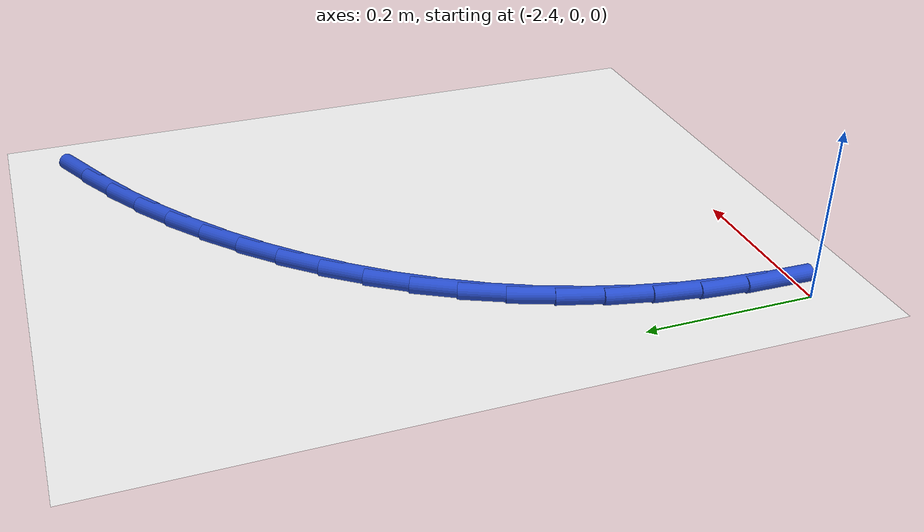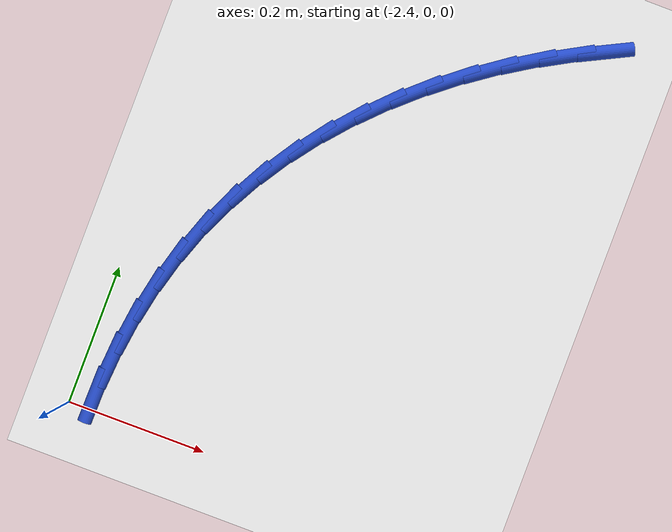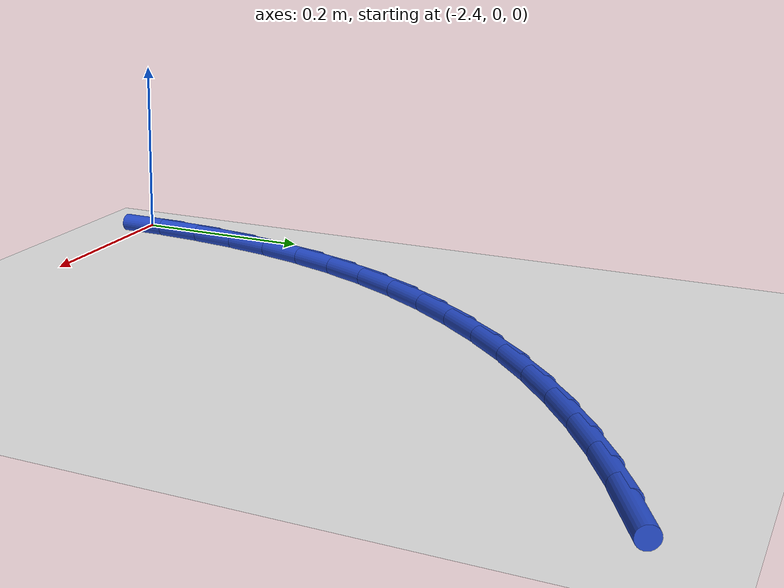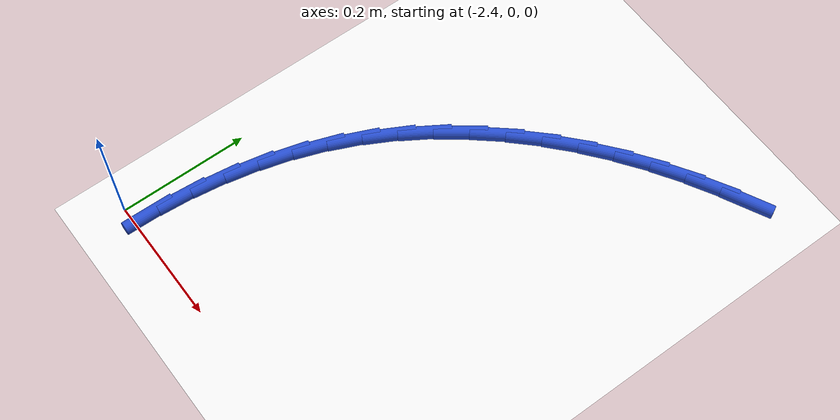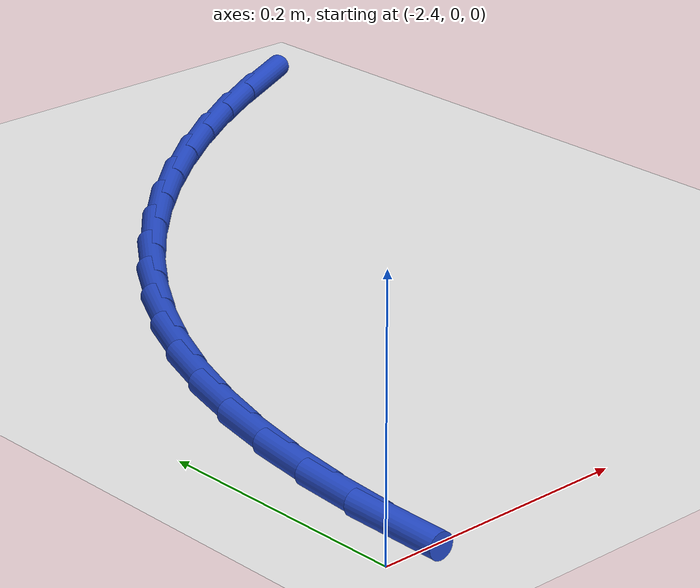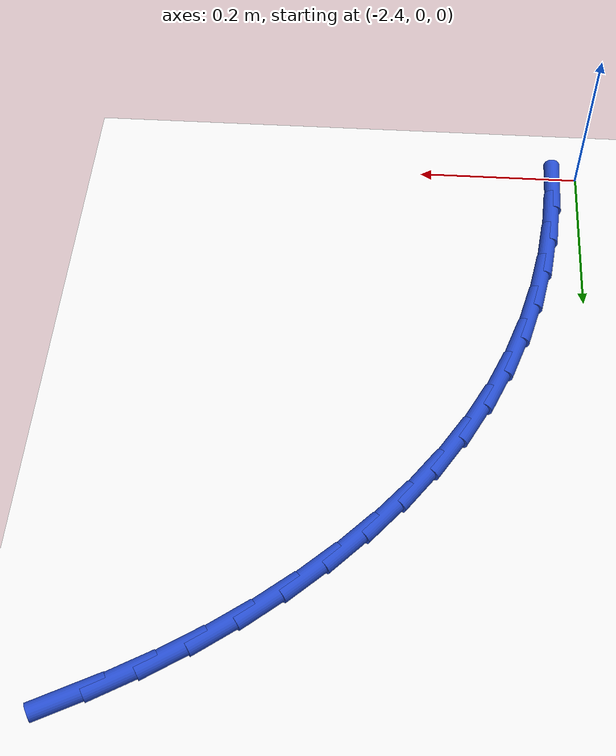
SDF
<sdf version="1.6">
 <world name="default">
  <model name="ground_plane">
   <static>1</static>
   <link name="link">
    <collision name="collision">
     <geometry><plane><normal>0 0 1</normal><size>100 100</size></plane></geometry>
     <surface><friction><ode><mu>100</mu><mu2>50</mu2></ode></friction></surface>
    </collision>
    <visual name="visual">
     <cast_shadows>0</cast_shadows>
     <geometry><plane><normal>0 0 1</normal><size>100 100</size></plane></geometry>
     <material>
      <script><uri>file://media/materials/scripts/gazebo.material</uri><name>Gazebo/WhiteGlow</name></script>
     </material>
    </visual>
   </link>
  </model>
  <model name="line">
   <link name="link_52">
    <pose>-1.8726098011475572 0.7176083647409058 0.01 0 1.57 0.4628664930515197</pose>
    <collision name="collision">
     <geometry><cylinder><radius>0.01</radius><length>0.08</length></cylinder></geometry>
    </collision>
    <visual name="visual">
     <material>
      <script><name>Gazebo/Blue</name><uri>file://media/materials/scripts/gazebo.material</uri></script>
     </material>
     <geometry><cylinder><radius>0.01</radius><length>0.08</length></cylinder></geometry>
    </visual>
   </link>
   <link name="link_53">
    <pose>-1.9206574777970238 0.6936314216186111 0.01 0 1.57 0.5110087323230389</pose>
    <collision name="collision">
     <geometry><cylinder><radius>0.01</radius><length>0.08</length></cylinder></geometry>
    </collision>
    <visual name="visual">
     <material>
      <script><name>Gazebo/Blue</name><uri>file://media/materials/scripts/gazebo.material</uri></script>
     </material>
     <geometry><cylinder><radius>0.01</radius><length>0.08</length></cylinder></geometry>
    </visual>
   </link>
   <link name="link_54">
    <pose>-1.9676411709379482 0.6672884255191486 0.01 0 1.57 0.5658011269243801</pose>
    <collision name="collision">
     <geometry><cylinder><radius>0.01</radius><length>0.08</length></cylinder></geometry>
    </collision>
    <visual name="visual">
     <material>
      <script><name>Gazebo/Blue</name><uri>file://media/materials/scripts/gazebo.material</uri></script>
     </material>
     <geometry><cylinder><radius>0.01</radius><length>0.08</length></cylinder></geometry>
    </visual>
   </link>
   <link name="link_55">
    <pose>-2.013155545488408 0.6383840451204902 0.01 0 1.57 0.6215293335487984</pose>
    <collision name="collision">
     <geometry><cylinder><radius>0.01</radius><length>0.08</length></cylinder></geometry>
    </collision>
    <visual name="visual">
     <material>
      <script><name>Gazebo/Blue</name><uri>file://media/materials/scripts/gazebo.material</uri></script>
     </material>
     <geometry><cylinder><radius>0.01</radius><length>0.08</length></cylinder></geometry>
    </visual>
   </link>
   <link name="link_56">
    <pose>-2.056950096576562 0.6070174979480414 0.01 0 1.57 0.6786666127427716</pose>
    <collision name="collision">
     <geometry><cylinder><radius>0.01</radius><length>0.08</length></cylinder></geometry>
    </collision>
    <visual name="visual">
     <material>
      <script><name>Gazebo/Blue</name><uri>file://media/materials/scripts/gazebo.material</uri></script>
     </material>
     <geometry><cylinder><radius>0.01</radius><length>0.08</length></cylinder></geometry>
    </visual>
   </link>
   <link name="link_57">
    <pose>-2.0987743193305732 0.573288001527207 0.01 0 1.57 0.7376788232629999</pose>
    <collision name="collision">
     <geometry><cylinder><radius>0.01</radius><length>0.08</length></cylinder></geometry>
    </collision>
    <visual name="visual">
     <material>
      <script><name>Gazebo/Blue</name><uri>file://media/materials/scripts/gazebo.material</uri></script>
     </material>
     <geometry><cylinder><radius>0.01</radius><length>0.08</length></cylinder></geometry>
    </visual>
   </link>
   <link name="link_58">
    <pose>-2.1383777088785996 0.5372947733833923 0.01 0 1.57 0.7990205599105303</pose>
    <collision name="collision">
     <geometry><cylinder><radius>0.01</radius><length>0.08</length></cylinder></geometry>
    </collision>
    <visual name="visual">
     <material>
      <script><name>Gazebo/Blue</name><uri>file://media/materials/scripts/gazebo.material</uri></script>
     </material>
     <geometry><cylinder><radius>0.01</radius><length>0.08</length></cylinder></geometry>
    </visual>
   </link>
   <link name="link_59">
    <pose>-2.175509760348804 0.49913703104200213 0.01 0 1.57 0.8631265152240056</pose>
    <collision name="collision">
     <geometry><cylinder><radius>0.01</radius><length>0.08</length></cylinder></geometry>
    </collision>
    <visual name="visual">
     <material>
      <script><name>Gazebo/Blue</name><uri>file://media/materials/scripts/gazebo.material</uri></script>
     </material>
     <geometry><cylinder><radius>0.01</radius><length>0.08</length></cylinder></geometry>
    </visual>
   </link>
   <link name="link_60">
    <pose>-2.209919968869345 0.45891399202844213 0.01 0 1.57 0.9303967077149592</pose>
    <collision name="collision">
     <geometry><cylinder><radius>0.01</radius><length>0.08</length></cylinder></geometry>
    </collision>
    <visual name="visual">
     <material>
      <script><name>Gazebo/Blue</name><uri>file://media/materials/scripts/gazebo.material</uri></script>
     </material>
     <geometry><cylinder><radius>0.01</radius><length>0.08</length></cylinder></geometry>
    </visual>
   </link>
   <link name="link_61">
    <pose>-2.241357829568386 0.4167248738681169 0.01 0 1.57 1.0011743313506876</pose>
    <collision name="collision">
     <geometry><cylinder><radius>0.01</radius><length>0.08</length></cylinder></geometry>
    </collision>
    <visual name="visual">
     <material>
      <script><name>Gazebo/Blue</name><uri>file://media/materials/scripts/gazebo.material</uri></script>
     </material>
     <geometry><cylinder><radius>0.01</radius><length>0.08</length></cylinder></geometry>
    </visual>
   </link>
   <link name="link_62">
    <pose>-2.269572837574086 0.37266889408643217 0.01 0 1.57 1.0757155512853973</pose>
    <collision name="collision">
     <geometry><cylinder><radius>0.01</radius><length>0.08</length></cylinder></geometry>
    </collision>
    <visual name="visual">
     <material>
      <script><name>Gazebo/Blue</name><uri>file://media/materials/scripts/gazebo.material</uri></script>
     </material>
     <geometry><cylinder><radius>0.01</radius><length>0.08</length></cylinder></geometry>
    </visual>
   </link>
   <link name="link_63">
    <pose>-2.2943144880146065 0.3268452702087923 0.01 0 1.57 1.1532939582636539</pose>
    <collision name="collision">
     <geometry><cylinder><radius>0.01</radius><length>0.08</length></cylinder></geometry>
    </collision>
    <visual name="visual">
     <material>
      <script><name>Gazebo/Blue</name><uri>file://media/materials/scripts/gazebo.material</uri></script>
     </material>
     <geometry><cylinder><radius>0.01</radius><length>0.08</length></cylinder></geometry>
    </visual>
   </link>
   <link name="link_64">
    <pose>-2.315376935089175 0.2793624262901538 0.01 0 1.57 1.2291708550274865</pose>
    <collision name="collision">
     <geometry><cylinder><radius>0.01</radius><length>0.08</length></cylinder></geometry>
    </collision>
    <visual name="visual">
     <material>
      <script><name>Gazebo/Blue</name><uri>file://media/materials/scripts/gazebo.material</uri></script>
     </material>
     <geometry><cylinder><radius>0.01</radius><length>0.08</length></cylinder></geometry>
    </visual>
   </link>
   <link name="link_65">
    <pose>-2.3327940947707795 0.23037821360826066 0.01 0 1.57 1.3015004724872115</pose>
    <collision name="collision">
     <geometry><cylinder><radius>0.01</radius><length>0.08</length></cylinder></geometry>
    </collision>
    <visual name="visual">
     <material>
      <script><name>Gazebo/Blue</name><uri>file://media/materials/scripts/gazebo.material</uri></script>
     </material>
     <geometry><cylinder><radius>0.01</radius><length>0.08</length></cylinder></geometry>
    </visual>
   </link>
   <link name="link_66">
    <pose>-2.3466800000627344 0.1800669996779746 0.01 0 1.57 1.3701150978979297</pose>
    <collision name="collision">
     <geometry><cylinder><radius>0.01</radius><length>0.08</length></cylinder></geometry>
    </collision>
    <visual name="visual">
     <material>
      <script><name>Gazebo/Blue</name><uri>file://media/materials/scripts/gazebo.material</uri></script>
     </material>
     <geometry><cylinder><radius>0.01</radius><length>0.08</length></cylinder></geometry>
    </visual>
   </link>
   <link name="link_67">
    <pose>-2.357148740398424 0.12860316364729565 0.01 0 1.57 1.434997694866669</pose>
    <collision name="collision">
     <geometry><cylinder><radius>0.01</radius><length>0.08</length></cylinder></geometry>
    </collision>
    <visual name="visual">
     <material>
      <script><name>Gazebo/Blue</name><uri>file://media/materials/scripts/gazebo.material</uri></script>
     </material>
     <geometry><cylinder><radius>0.01</radius><length>0.08</length></cylinder></geometry>
    </visual>
   </link>
   <link name="link_68">
    <pose>-2.364314405211234 0.07616108466422299 0.01 0 1.57 1.4962496220048116</pose>
    <collision name="collision">
     <geometry><cylinder><radius>0.01</radius><length>0.08</length></cylinder></geometry>
    </collision>
    <visual name="visual">
     <material>
      <script><name>Gazebo/Blue</name><uri>file://media/materials/scripts/gazebo.material</uri></script>
     </material>
     <geometry><cylinder><radius>0.01</radius><length>0.08</length></cylinder></geometry>
    </visual>
   </link>
   <link name="link_69">
    <pose>-2.368291083934548 0.022915141876756626 0.01 0 1.57 1.554059608281566</pose>
    <collision name="collision">
     <geometry><cylinder><radius>0.01</radius><length>0.08</length></cylinder></geometry>
    </collision>
    <visual name="visual">
     <material>
      <script><name>Gazebo/Blue</name><uri>file://media/materials/scripts/gazebo.material</uri></script>
     </material>
     <geometry><cylinder><radius>0.01</radius><length>0.08</length></cylinder></geometry>
    </visual>
   </link>
  </model>
 </world>
</sdf>
